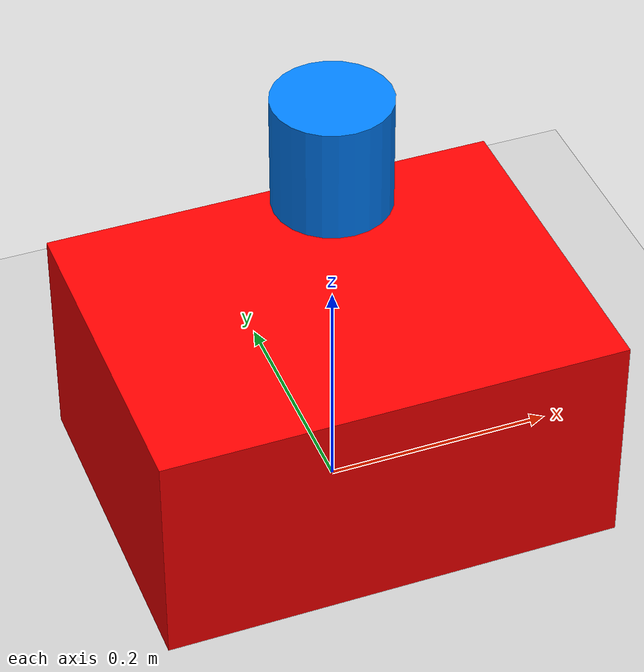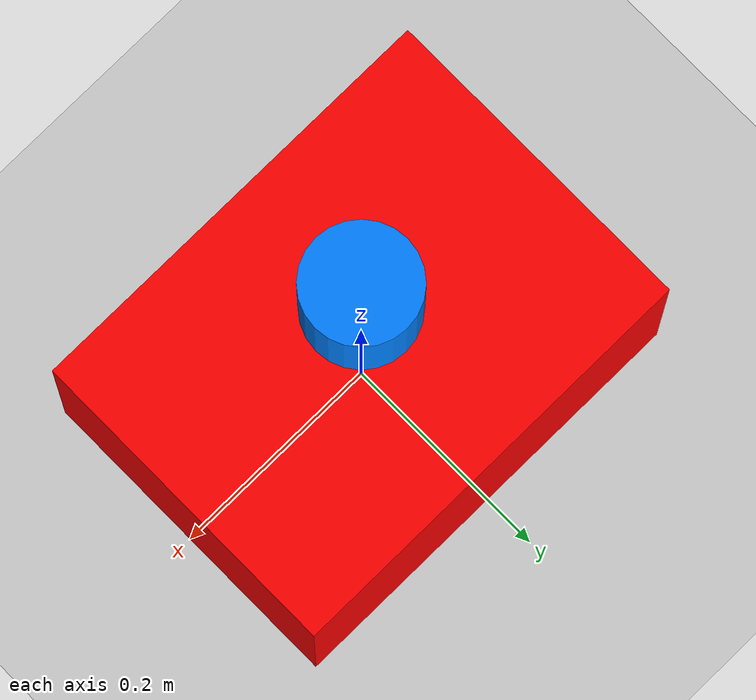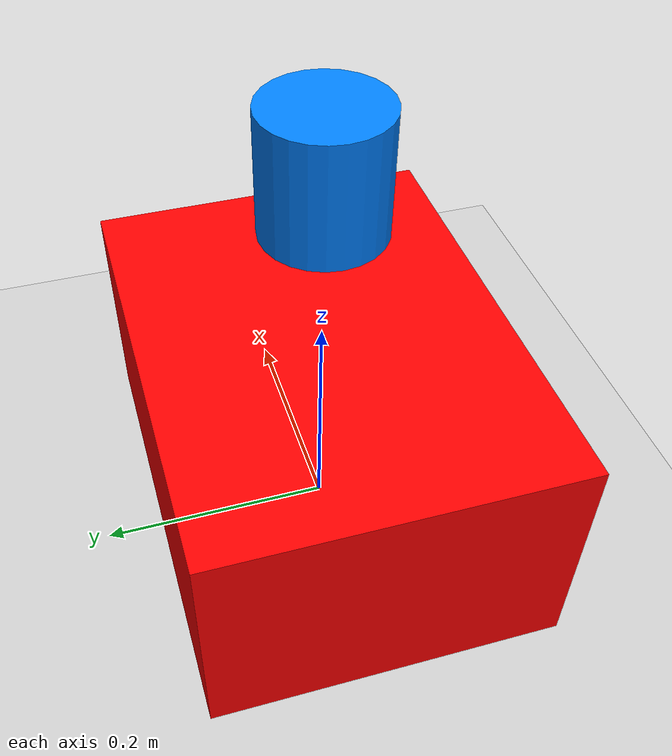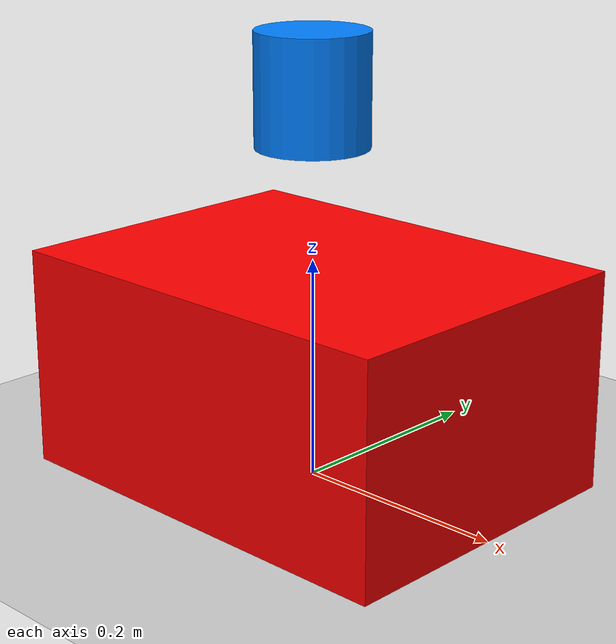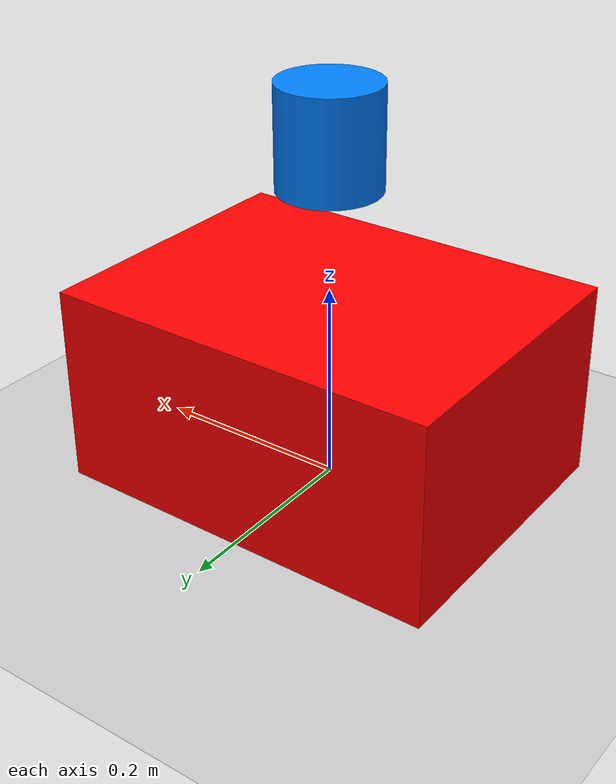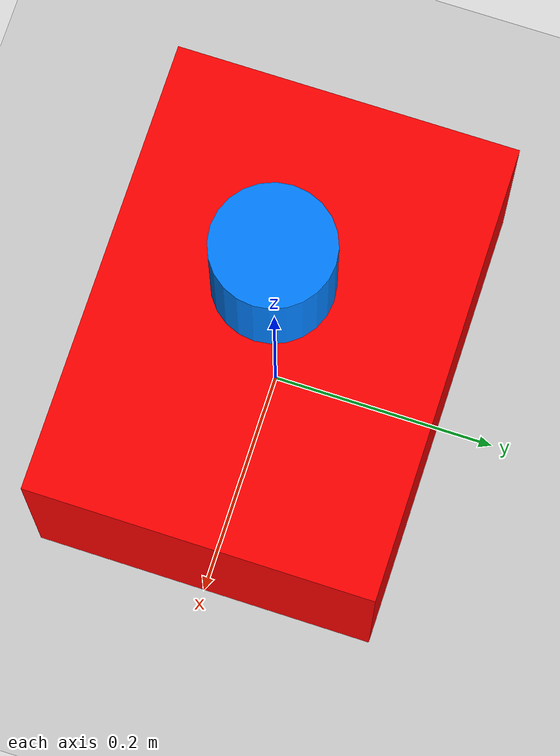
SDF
<?xml version="1.0"?>
<sdf version="1.6">
  <world name="slide_slam_world">
    <include><uri>model://sun</uri></include>
    <include><uri>model://ground_plane</uri></include>

    <model name="mobile_base">
      <pose>0 0 0.1 0 0 0</pose>
      <link name="base_link">
        <visual name="visual">
          <geometry><box><size>0.4 0.3 0.2</size></box></geometry>
          <material><ambient>1 0 0 1</ambient></material>
        </visual>
        <collision name="collision">
          <geometry><box><size>0.4 0.3 0.2</size></box></geometry>
        </collision>
      </link>
    </model>

    <model name="ouster_sensor">
      <pose>0 0 0.35 0 0 0</pose>
      <link name="sensor_link">
        <visual name="visual">
          <geometry><cylinder><radius>0.05</radius><length>0.1</length></cylinder></geometry>
          <material><ambient>0 0.5 1 1</ambient></material>
        </visual>
      </link>
      <plugin name="laser_plugin" filename="libgazebo_ros_laser.so">
        <topicName>/scan</topicName>
        <frameName>os_sensor</frameName>
        <updateRate>10</updateRate>
      </plugin>
    </model>
  </world>
</sdf>
